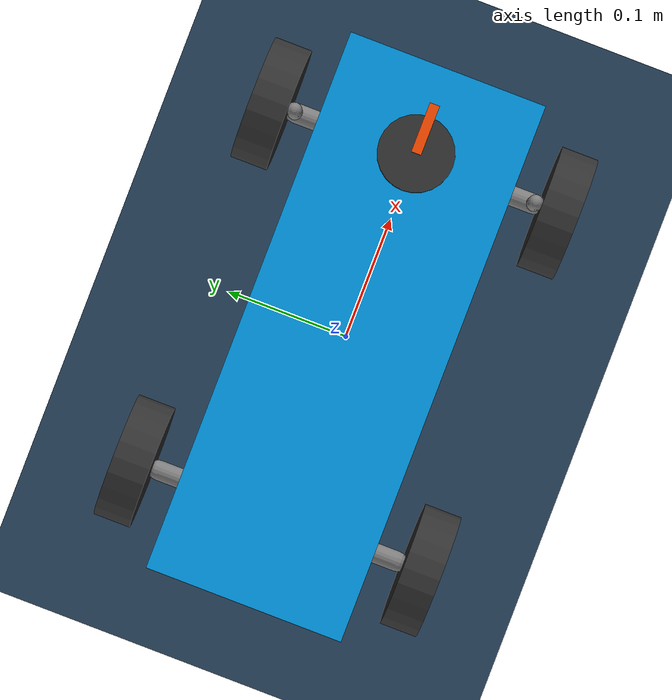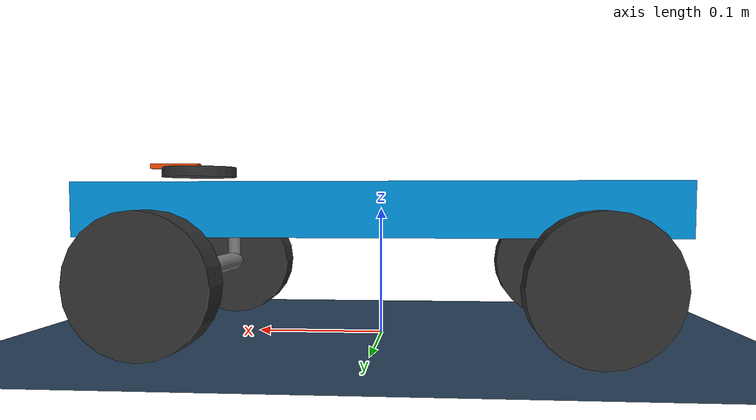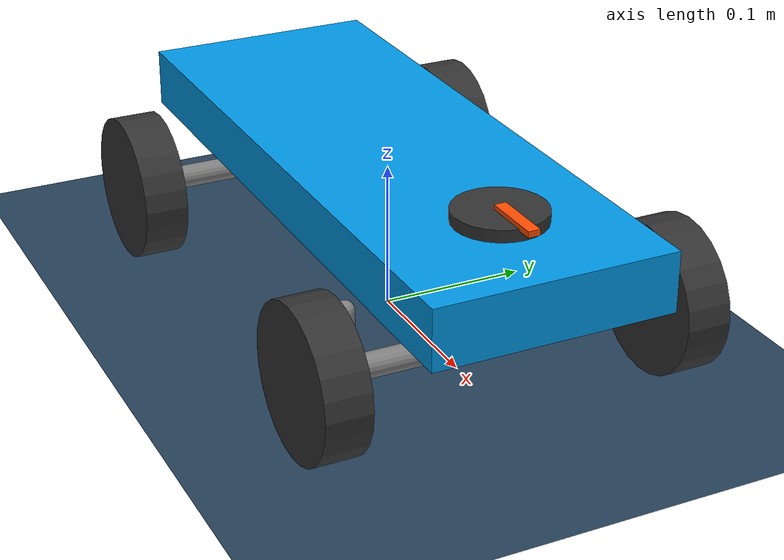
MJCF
<mujoco model="ackermann_drive">
  <statistic center="0 0 0.1" extent="1.2" meansize=".05"/>

  <visual>
    <headlight diffuse="0.6 0.6 0.6" ambient="0.3 0.3 0.3" specular="0 0 0"/>
    <rgba haze="0.15 0.25 0.35 1"/>
    <global azimuth="-20" elevation="-20" ellipsoidinertia="true"/>
  </visual>

  <asset>
    <texture type="skybox" builtin="gradient" rgb1="0.3 0.5 0.7" rgb2="0 0 0" width="512" height="3072"/>
    <texture type="2d" name="groundplane" builtin="checker" mark="edge" rgb1="0.2 0.3 0.4" rgb2="0.1 0.2 0.3"
      markrgb="0.8 0.8 0.8" width="300" height="300"/>
    <material name="groundplane" texture="groundplane" texuniform="true" texrepeat="5 5" reflectance="0.2"/>
  </asset>

  <!-- implicitfast keeps the stiff velocity servos on the light wheels stable. -->
  <option gravity="0 0 -9.81" timestep="0.002" integrator="implicitfast"/>

  <!-- Only the wheels touch the ground; the rest of the car is visual. -->
  <default>
    <geom contype="0" conaffinity="0"/>
    <default class="steer">
      <joint type="hinge" axis="0 0 1" range="-45 45" damping="0.1" armature="0.001"/>
      <geom type="capsule" fromto="0 0 0 0 0 0.04" size="0.006" rgba="0.5 0.5 0.5 1" mass="0.02"/>
    </default>
    <default class="wheel">
      <geom type="cylinder" size="0.05 0.015" zaxis="0 1 0" contype="1" conaffinity="1" rgba="0.2 0.2 0.2 1"
        mass="0.15"/>
      <joint type="hinge" axis="0 1 0" damping="0.01" armature="0.0005"/>
    </default>
  </default>

  <worldbody>
    <light pos="0 0 1.5" dir="0 0 -1" directional="true"/>
    <geom name="floor" size="0 0 0.05" type="plane" material="groundplane" contype="1" conaffinity="1"/>

    <body name="chassis" pos="0 0 0.05">
      <freejoint/>
      <geom name="body" type="box" pos="0 0 0.05" size="0.22 0.08 0.02" rgba="0 0.6 0.9 1" mass="2"/>
      <geom name="rear_axle" type="capsule" fromto="-0.15 -0.1 0 -0.15 0.1 0" size="0.008" rgba="0.5 0.5 0.5 1"
        mass="0"/>
      <geom name="front_axle" type="capsule" fromto="0.15 -0.1 0 0.15 0.1 0" size="0.008" rgba="0.5 0.5 0.5 1"
        mass="0"/>
      <site name="rear_axle_center" pos="-0.15 0 0"/>

      <!-- The steering wheel is the virtual bicycle wheel: its angle is delta. It is just a handle for the
           actuator; the front wheels follow it through the equality constraints below. -->
      <body name="steering_wheel" pos="0.15 0 0.08">
        <joint name="steering" type="hinge" axis="0 0 1" range="-34 34" damping="0.1" armature="0.001"/>
        <geom name="steering_wheel" type="cylinder" size="0.03 0.004" rgba="0.2 0.2 0.2 1" mass="0.02"/>
        <geom name="heading" type="box" pos="0.02 0 0.005" size="0.02 0.004 0.002" rgba="1 0.3 0 1" mass="0"/>
      </body>

      <!-- Wheelbase L = 0.3 m, track W = 0.2 m, wheel radius r = 0.05 m. -->
      <body name="front_left_knuckle" pos="0.15 0.1 0">
        <joint name="steer_left" class="steer"/>
        <geom name="kingpin_left" class="steer"/>
        <body name="front_left_wheel" pos="0 0.02 0">
          <joint name="front_left_wheel" class="wheel"/>
          <geom name="front_left_wheel" class="wheel"/>
        </body>
      </body>
      <body name="front_right_knuckle" pos="0.15 -0.1 0">
        <joint name="steer_right" class="steer"/>
        <geom name="kingpin_right" class="steer"/>
        <body name="front_right_wheel" pos="0 -0.02 0">
          <joint name="front_right_wheel" class="wheel"/>
          <geom name="front_right_wheel" class="wheel"/>
        </body>
      </body>
      <body name="rear_left_wheel" pos="-0.15 0.12 0">
        <joint name="rear_left_wheel" class="wheel"/>
        <geom name="rear_left_wheel" class="wheel"/>
      </body>
      <body name="rear_right_wheel" pos="-0.15 -0.12 0">
        <joint name="rear_right_wheel" class="wheel"/>
        <geom name="rear_right_wheel" class="wheel"/>
      </body>
    </body>
  </worldbody>

  <equality>
    <joint joint1="steer_left" joint2="steering" polycoef="0 1.0029 0.3355 0.0731 -0.0943"/>
    <joint joint1="steer_right" joint2="steering" polycoef="0 1.0029 -0.3355 0.0731 0.0943"/>
  </equality>

  <!-- Open differential: the drive tendon is the average of the rear wheel angles. A force on the tendon
       is split equally between the two wheels, while each wheel is free to turn at its own speed. -->
  <tendon>
    <fixed name="rear_differential">
      <joint joint="rear_left_wheel" coef="0.5"/>
      <joint joint="rear_right_wheel" coef="0.5"/>
    </fixed>
  </tendon>

  <sensor>
    <jointpos name="steering_pos" joint="steering"/>
    <jointpos name="steer_left_pos" joint="steer_left"/>
    <jointpos name="steer_right_pos" joint="steer_right"/>
    <tendonvel name="drive_vel" tendon="rear_differential"/>
    <framepos name="rear_axle_pos" objtype="site" objname="rear_axle_center"/>
    <velocimeter name="rear_axle_linvel" site="rear_axle_center"/>
    <gyro name="chassis_angvel" site="rear_axle_center"/>
  </sensor>

  <actuator>
    <!-- Steering angle delta in rad, mean rear wheel speed in rad/s (20 rad/s is 1 m/s). -->
    <position name="steering" joint="steering" kp="20" dampratio="1" ctrlrange="-0.6 0.6"/>
    <velocity name="drive" tendon="rear_differential" kv="1" ctrlrange="-20 20" forcerange="-6 6"/>
  </actuator>
</mujoco>
